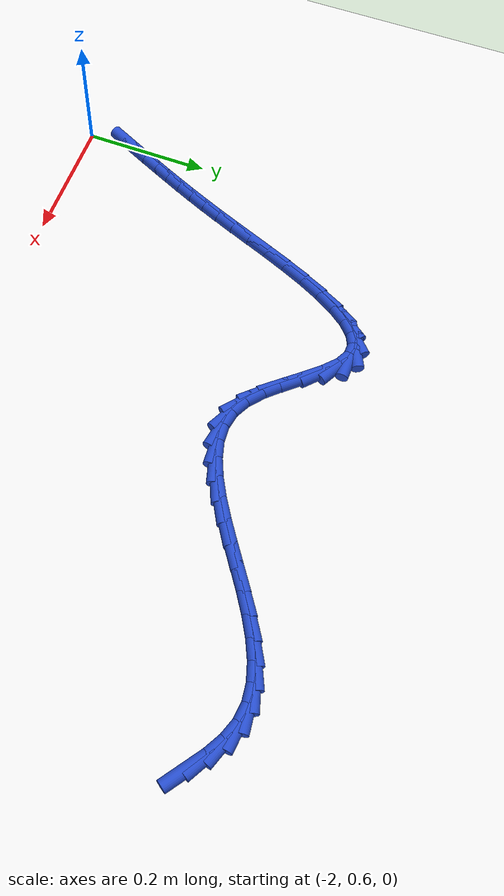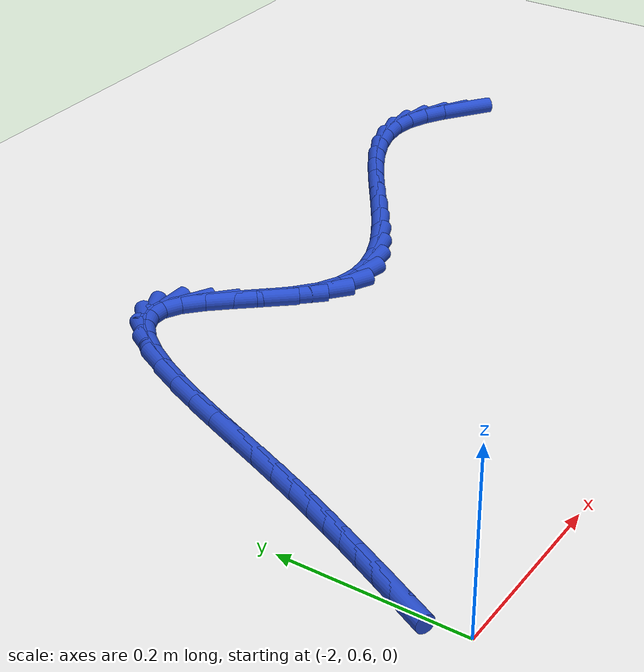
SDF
<sdf version="1.6">
 <world name="default">
  <model name="ground_plane">
   <static>1</static>
   <link name="link">
    <collision name="collision">
     <geometry><plane><normal>0 0 1</normal><size>100 100</size></plane></geometry>
     <surface><friction><ode><mu>100</mu><mu2>50</mu2></ode></friction></surface>
    </collision>
    <visual name="visual">
     <cast_shadows>0</cast_shadows>
     <geometry><plane><normal>0 0 1</normal><size>100 100</size></plane></geometry>
     <material>
      <script><uri>file://media/materials/scripts/gazebo.material</uri><name>Gazebo/WhiteGlow</name></script>
     </material>
    </visual>
   </link>
  </model>
  <model name="line">
   <link name="link_64">
    <pose>-1.0912601882447839 1.1241705421211128 0.01 0 1.57 -0.620754193370026</pose>
    <collision name="collision">
     <geometry><cylinder><radius>0.01</radius><length>0.08</length></cylinder></geometry>
    </collision>
    <visual name="visual">
     <material>
      <script><name>Gazebo/Blue</name><uri>file://media/materials/scripts/gazebo.material</uri></script>
     </material>
     <geometry><cylinder><radius>0.01</radius><length>0.08</length></cylinder></geometry>
    </visual>
   </link>
   <link name="link_65">
    <pose>-1.1162458240286837 1.142036476023913 0.01 0 1.57 -0.5146309187651498</pose>
    <collision name="collision">
     <geometry><cylinder><radius>0.01</radius><length>0.08</length></cylinder></geometry>
    </collision>
    <visual name="visual">
     <material>
      <script><name>Gazebo/Blue</name><uri>file://media/materials/scripts/gazebo.material</uri></script>
     </material>
     <geometry><cylinder><radius>0.01</radius><length>0.08</length></cylinder></geometry>
    </visual>
   </link>
   <link name="link_66">
    <pose>-1.1416444502299576 1.1563982409591573 0.01 0 1.57 -0.34747569862418815</pose>
    <collision name="collision">
     <geometry><cylinder><radius>0.01</radius><length>0.08</length></cylinder></geometry>
    </collision>
    <visual name="visual">
     <material>
      <script><name>Gazebo/Blue</name><uri>file://media/materials/scripts/gazebo.material</uri></script>
     </material>
     <geometry><cylinder><radius>0.01</radius><length>0.08</length></cylinder></geometry>
    </visual>
   </link>
   <link name="link_67">
    <pose>-1.1676107023713325 1.1658024506579252 0.01 0 1.57 -0.11620844488841818</pose>
    <collision name="collision">
     <geometry><cylinder><radius>0.01</radius><length>0.08</length></cylinder></geometry>
    </collision>
    <visual name="visual">
     <material>
      <script><name>Gazebo/Blue</name><uri>file://media/materials/scripts/gazebo.material</uri></script>
     </material>
     <geometry><cylinder><radius>0.01</radius><length>0.08</length></cylinder></geometry>
    </visual>
   </link>
   <link name="link_68">
    <pose>-1.194285570228508 1.1689163252101482 0.01 0 1.57 0.1132284712387262</pose>
    <collision name="collision">
     <geometry><cylinder><radius>0.01</radius><length>0.08</length></cylinder></geometry>
    </collision>
    <visual name="visual">
     <material>
      <script><name>Gazebo/Blue</name><uri>file://media/materials/scripts/gazebo.material</uri></script>
     </material>
     <geometry><cylinder><radius>0.01</radius><length>0.08</length></cylinder></geometry>
    </visual>
   </link>
   <link name="link_69">
    <pose>-1.221651951743687 1.165804361114755 0.01 0 1.57 0.2912066357050443</pose>
    <collision name="collision">
     <geometry><cylinder><radius>0.01</radius><length>0.08</length></cylinder></geometry>
    </collision>
    <visual name="visual">
     <material>
      <script><name>Gazebo/Blue</name><uri>file://media/materials/scripts/gazebo.material</uri></script>
     </material>
     <geometry><cylinder><radius>0.01</radius><length>0.08</length></cylinder></geometry>
    </visual>
   </link>
   <link name="link_70">
    <pose>-1.249591005945047 1.157430262510288 0.01 0 1.57 0.419380567588263</pose>
    <collision name="collision">
     <geometry><cylinder><radius>0.01</radius><length>0.08</length></cylinder></geometry>
    </collision>
    <visual name="visual">
     <material>
      <script><name>Gazebo/Blue</name><uri>file://media/materials/scripts/gazebo.material</uri></script>
     </material>
     <geometry><cylinder><radius>0.01</radius><length>0.08</length></cylinder></geometry>
    </visual>
   </link>
   <link name="link_71">
    <pose>-1.2779822076684817 1.144772619074259 0.01 0 1.57 0.5072441272788148</pose>
    <collision name="collision">
     <geometry><cylinder><radius>0.01</radius><length>0.08</length></cylinder></geometry>
    </collision>
    <visual name="visual">
     <material>
      <script><name>Gazebo/Blue</name><uri>file://media/materials/scripts/gazebo.material</uri></script>
     </material>
     <geometry><cylinder><radius>0.01</radius><length>0.08</length></cylinder></geometry>
    </visual>
   </link>
   <link name="link_72">
    <pose>-1.3067050317498823 1.1288100204841793 0.01 0 1.57 0.5636845109770585</pose>
    <collision name="collision">
     <geometry><cylinder><radius>0.01</radius><length>0.08</length></cylinder></geometry>
    </collision>
    <visual name="visual">
     <material>
      <script><name>Gazebo/Blue</name><uri>file://media/materials/scripts/gazebo.material</uri></script>
     </material>
     <geometry><cylinder><radius>0.01</radius><length>0.08</length></cylinder></geometry>
    </visual>
   </link>
   <link name="link_73">
    <pose>-1.3356389530251436 1.1105210564175605 0.01 0 1.57 0.594818910414515</pose>
    <collision name="collision">
     <geometry><cylinder><radius>0.01</radius><length>0.08</length></cylinder></geometry>
    </collision>
    <visual name="visual">
     <material>
      <script><name>Gazebo/Blue</name><uri>file://media/materials/scripts/gazebo.material</uri></script>
     </material>
     <geometry><cylinder><radius>0.01</radius><length>0.08</length></cylinder></geometry>
    </visual>
   </link>
   <link name="link_74">
    <pose>-1.3646634463301586 1.0908843165519138 0.01 0 1.57 0.6039758114208391</pose>
    <collision name="collision">
     <geometry><cylinder><radius>0.01</radius><length>0.08</length></cylinder></geometry>
    </collision>
    <visual name="visual">
     <material>
      <script><name>Gazebo/Blue</name><uri>file://media/materials/scripts/gazebo.material</uri></script>
     </material>
     <geometry><cylinder><radius>0.01</radius><length>0.08</length></cylinder></geometry>
    </visual>
   </link>
   <link name="link_75">
    <pose>-1.3936579865008187 1.0708783905647496 0.01 0 1.57 0.5920037202527177</pose>
    <collision name="collision">
     <geometry><cylinder><radius>0.01</radius><length>0.08</length></cylinder></geometry>
    </collision>
    <visual name="visual">
     <material>
      <script><name>Gazebo/Blue</name><uri>file://media/materials/scripts/gazebo.material</uri></script>
     </material>
     <geometry><cylinder><radius>0.01</radius><length>0.08</length></cylinder></geometry>
    </visual>
   </link>
   <link name="link_76">
    <pose>-1.4225020483730182 1.0514818681335807 0.01 0 1.57 0.5573492386233017</pose>
    <collision name="collision">
     <geometry><cylinder><radius>0.01</radius><length>0.08</length></cylinder></geometry>
    </collision>
    <visual name="visual">
     <material>
      <script><name>Gazebo/Blue</name><uri>file://media/materials/scripts/gazebo.material</uri></script>
     </material>
     <geometry><cylinder><radius>0.01</radius><length>0.08</length></cylinder></geometry>
    </visual>
   </link>
   <link name="link_77">
    <pose>-1.4510751067826488 1.033673338935917 0.01 0 1.57 0.4957901919988571</pose>
    <collision name="collision">
     <geometry><cylinder><radius>0.01</radius><length>0.08</length></cylinder></geometry>
    </collision>
    <visual name="visual">
     <material>
      <script><name>Gazebo/Blue</name><uri>file://media/materials/scripts/gazebo.material</uri></script>
     </material>
     <geometry><cylinder><radius>0.01</radius><length>0.08</length></cylinder></geometry>
    </visual>
   </link>
   <link name="link_78">
    <pose>-1.479256636565605 1.0184313926492707 0.01 0 1.57 0.3999480874389885</pose>
    <collision name="collision">
     <geometry><cylinder><radius>0.01</radius><length>0.08</length></cylinder></geometry>
    </collision>
    <visual name="visual">
     <material>
      <script><name>Gazebo/Blue</name><uri>file://media/materials/scripts/gazebo.material</uri></script>
     </material>
     <geometry><cylinder><radius>0.01</radius><length>0.08</length></cylinder></geometry>
    </visual>
   </link>
   <link name="link_79">
    <pose>-1.5069261125577786 1.0067346189511532 0.01 0 1.57 0.2593302625753998</pose>
    <collision name="collision">
     <geometry><cylinder><radius>0.01</radius><length>0.08</length></cylinder></geometry>
    </collision>
    <visual name="visual">
     <material>
      <script><name>Gazebo/Blue</name><uri>file://media/materials/scripts/gazebo.material</uri></script>
     </material>
     <geometry><cylinder><radius>0.01</radius><length>0.08</length></cylinder></geometry>
    </visual>
   </link>
   <link name="link_80">
    <pose>-1.533963009595063 0.9995616075190752 0.01 0 1.57 0.06347695003753862</pose>
    <collision name="collision">
     <geometry><cylinder><radius>0.01</radius><length>0.08</length></cylinder></geometry>
    </collision>
    <visual name="visual">
     <material>
      <script><name>Gazebo/Blue</name><uri>file://media/materials/scripts/gazebo.material</uri></script>
     </material>
     <geometry><cylinder><radius>0.01</radius><length>0.08</length></cylinder></geometry>
    </visual>
   </link>
   <link name="link_81">
    <pose>-1.5602468025133507 0.9978909480305482 0.01 0 1.57 -0.18709149837114783</pose>
    <collision name="collision">
     <geometry><cylinder><radius>0.01</radius><length>0.08</length></cylinder></geometry>
    </collision>
    <visual name="visual">
     <material>
      <script><name>Gazebo/Blue</name><uri>file://media/materials/scripts/gazebo.material</uri></script>
     </material>
     <geometry><cylinder><radius>0.01</radius><length>0.08</length></cylinder></geometry>
    </visual>
   </link>
   <link name="link_82">
    <pose>-1.5856569661485351 1.0027012301630835 0.01 0 1.57 -0.46541060011991486</pose>
    <collision name="collision">
     <geometry><cylinder><radius>0.01</radius><length>0.08</length></cylinder></geometry>
    </collision>
    <visual name="visual">
     <material>
      <script><name>Gazebo/Blue</name><uri>file://media/materials/scripts/gazebo.material</uri></script>
     </material>
     <geometry><cylinder><radius>0.01</radius><length>0.08</length></cylinder></geometry>
    </visual>
   </link>
   <link name="link_83">
    <pose>-1.6100733873856257 1.0149632957275725 0.01 0 1.57 -0.6945155006325218</pose>
    <collision name="collision">
     <geometry><cylinder><radius>0.01</radius><length>0.08</length></cylinder></geometry>
    </collision>
    <visual name="visual">
     <material>
      <script><name>Gazebo/Blue</name><uri>file://media/materials/scripts/gazebo.material</uri></script>
     </material>
     <geometry><cylinder><radius>0.01</radius><length>0.08</length></cylinder></geometry>
    </visual>
   </link>
   <link name="link_84">
    <pose>-1.633440867891998 1.0344273770110093 0.01 0 1.57 -0.8173119481413946</pose>
    <collision name="collision">
     <geometry><cylinder><radius>0.01</radius><length>0.08</length></cylinder></geometry>
    </collision>
    <visual name="visual">
     <material>
      <script><name>Gazebo/Blue</name><uri>file://media/materials/scripts/gazebo.material</uri></script>
     </material>
     <geometry><cylinder><radius>0.01</radius><length>0.08</length></cylinder></geometry>
    </visual>
   </link>
   <link name="link_85">
    <pose>-1.6558393235288873 1.058303118997737 0.01 0 1.57 -0.8634671493344086</pose>
    <collision name="collision">
     <geometry><cylinder><radius>0.01</radius><length>0.08</length></cylinder></geometry>
    </collision>
    <visual name="visual">
     <material>
      <script><name>Gazebo/Blue</name><uri>file://media/materials/scripts/gazebo.material</uri></script>
     </material>
     <geometry><cylinder><radius>0.01</radius><length>0.08</length></cylinder></geometry>
    </visual>
   </link>
   <link name="link_86">
    <pose>-1.6773655347235532 1.0834830578541 0.01 0 1.57 -0.8448358490047891</pose>
    <collision name="collision">
     <geometry><cylinder><radius>0.01</radius><length>0.08</length></cylinder></geometry>
    </collision>
    <visual name="visual">
     <material>
      <script><name>Gazebo/Blue</name><uri>file://media/materials/scripts/gazebo.material</uri></script>
     </material>
     <geometry><cylinder><radius>0.01</radius><length>0.08</length></cylinder></geometry>
    </visual>
   </link>
   <link name="link_87">
    <pose>-1.6981162819032556 1.1068597297464418 0.01 0 1.57 -0.7437459403987068</pose>
    <collision name="collision">
     <geometry><cylinder><radius>0.01</radius><length>0.08</length></cylinder></geometry>
    </collision>
    <visual name="visual">
     <material>
      <script><name>Gazebo/Blue</name><uri>file://media/materials/scripts/gazebo.material</uri></script>
     </material>
     <geometry><cylinder><radius>0.01</radius><length>0.08</length></cylinder></geometry>
    </visual>
   </link>
   <link name="link_88">
    <pose>-1.7181883454952542 1.1253256708411066 0.01 0 1.57 -0.49218034463802124</pose>
    <collision name="collision">
     <geometry><cylinder><radius>0.01</radius><length>0.08</length></cylinder></geometry>
    </collision>
    <visual name="visual">
     <material>
      <script><name>Gazebo/Blue</name><uri>file://media/materials/scripts/gazebo.material</uri></script>
     </material>
     <geometry><cylinder><radius>0.01</radius><length>0.08</length></cylinder></geometry>
    </visual>
   </link>
   <link name="link_89">
    <pose>-1.7376784356611237 1.1357761026511883 0.01 0 1.57 -0.02379140664681015</pose>
    <collision name="collision">
     <geometry><cylinder><radius>0.01</radius><length>0.08</length></cylinder></geometry>
    </collision>
    <visual name="visual">
     <material>
      <script><name>Gazebo/Blue</name><uri>file://media/materials/scripts/gazebo.material</uri></script>
     </material>
     <geometry><cylinder><radius>0.01</radius><length>0.08</length></cylinder></geometry>
    </visual>
   </link>
   <link name="link_90">
    <pose>-1.7566539197736541 1.1362276413082084 0.01 0 1.57 0.4396517719784026</pose>
    <collision name="collision">
     <geometry><cylinder><radius>0.01</radius><length>0.08</length></cylinder></geometry>
    </collision>
    <visual name="visual">
     <material>
      <script><name>Gazebo/Blue</name><uri>file://media/materials/scripts/gazebo.material</uri></script>
     </material>
     <geometry><cylinder><radius>0.01</radius><length>0.08</length></cylinder></geometry>
    </visual>
   </link>
   <link name="link_91">
    <pose>-1.7751075657602657 1.127547873149653 0.01 0 1.57 0.744276896580897</pose>
    <collision name="collision">
     <geometry><cylinder><radius>0.01</radius><length>0.08</length></cylinder></geometry>
    </collision>
    <visual name="visual">
     <material>
      <script><name>Gazebo/Blue</name><uri>file://media/materials/scripts/gazebo.material</uri></script>
     </material>
     <geometry><cylinder><radius>0.01</radius><length>0.08</length></cylinder></geometry>
    </visual>
   </link>
   <link name="link_92">
    <pose>-1.7930204615725192 1.11105075865169 0.01 0 1.57 0.9244392739908857</pose>
    <collision name="collision">
     <geometry><cylinder><radius>0.01</radius><length>0.08</length></cylinder></geometry>
    </collision>
    <visual name="visual">
     <material>
      <script><name>Gazebo/Blue</name><uri>file://media/materials/scripts/gazebo.material</uri></script>
     </material>
     <geometry><cylinder><radius>0.01</radius><length>0.08</length></cylinder></geometry>
    </visual>
   </link>
   <link name="link_93">
    <pose>-1.8103736951619769 1.0880502582904858 0.01 0 1.57 1.0340180898830007</pose>
    <collision name="collision">
     <geometry><cylinder><radius>0.01</radius><length>0.08</length></cylinder></geometry>
    </collision>
    <visual name="visual">
     <material>
      <script><name>Gazebo/Blue</name><uri>file://media/materials/scripts/gazebo.material</uri></script>
     </material>
     <geometry><cylinder><radius>0.01</radius><length>0.08</length></cylinder></geometry>
    </visual>
   </link>
   <link name="link_94">
    <pose>-1.8271483544802007 1.0598603325422078 0.01 0 1.57 1.1035506421934687</pose>
    <collision name="collision">
     <geometry><cylinder><radius>0.01</radius><length>0.08</length></cylinder></geometry>
    </collision>
    <visual name="visual">
     <material>
      <script><name>Gazebo/Blue</name><uri>file://media/materials/scripts/gazebo.material</uri></script>
     </material>
     <geometry><cylinder><radius>0.01</radius><length>0.08</length></cylinder></geometry>
    </visual>
   </link>
   <link name="link_95">
    <pose>-1.8433255274787517 1.0277949418830234 0.01 0 1.57 1.1484547366564242</pose>
    <collision name="collision">
     <geometry><cylinder><radius>0.01</radius><length>0.08</length></cylinder></geometry>
    </collision>
    <visual name="visual">
     <material>
      <script><name>Gazebo/Blue</name><uri>file://media/materials/scripts/gazebo.material</uri></script>
     </material>
     <geometry><cylinder><radius>0.01</radius><length>0.08</length></cylinder></geometry>
    </visual>
   </link>
   <link name="link_96">
    <pose>-1.8588863021091924 0.9931680467891004 0.01 0 1.57 1.176533050696146</pose>
    <collision name="collision">
     <geometry><cylinder><radius>0.01</radius><length>0.08</length></cylinder></geometry>
    </collision>
    <visual name="visual">
     <material>
      <script><name>Gazebo/Blue</name><uri>file://media/materials/scripts/gazebo.material</uri></script>
     </material>
     <geometry><cylinder><radius>0.01</radius><length>0.08</length></cylinder></geometry>
    </visual>
   </link>
   <link name="link_97">
    <pose>-1.8738117663230842 0.9572936077366052 0.01 0 1.57 1.1915416740291425</pose>
    <collision name="collision">
     <geometry><cylinder><radius>0.01</radius><length>0.08</length></cylinder></geometry>
    </collision>
    <visual name="visual">
     <material>
      <script><name>Gazebo/Blue</name><uri>file://media/materials/scripts/gazebo.material</uri></script>
     </material>
     <geometry><cylinder><radius>0.01</radius><length>0.08</length></cylinder></geometry>
    </visual>
   </link>
   <link name="link_98">
    <pose>-1.8880830080719906 0.921485585201706 0.01 0 1.57 1.194628133643989</pose>
    <collision name="collision">
     <geometry><cylinder><radius>0.01</radius><length>0.08</length></cylinder></geometry>
    </collision>
    <visual name="visual">
     <material>
      <script><name>Gazebo/Blue</name><uri>file://media/materials/scripts/gazebo.material</uri></script>
     </material>
     <geometry><cylinder><radius>0.01</radius><length>0.08</length></cylinder></geometry>
    </visual>
   </link>
   <link name="link_99">
    <pose>-1.9016811153074709 0.8870579396605687 0.01 0 1.57 1.1859395211893287</pose>
    <collision name="collision">
     <geometry><cylinder><radius>0.01</radius><length>0.08</length></cylinder></geometry>
    </collision>
    <visual name="visual">
     <material>
      <script><name>Gazebo/Blue</name><uri>file://media/materials/scripts/gazebo.material</uri></script>
     </material>
     <geometry><cylinder><radius>0.01</radius><length>0.08</length></cylinder></geometry>
    </visual>
   </link>
   <link name="link_100">
    <pose>-1.914603144323327 0.8551560532171754 0.01 0 1.57 1.173018923189869</pose>
    <collision name="collision">
     <geometry><cylinder><radius>0.01</radius><length>0.08</length></cylinder></geometry>
    </collision>
    <visual name="visual">
     <material>
      <script><name>Gazebo/Blue</name><uri>file://media/materials/scripts/gazebo.material</uri></script>
     </material>
     <geometry><cylinder><radius>0.01</radius><length>0.08</length></cylinder></geometry>
    </visual>
   </link>
   <link name="link_101">
    <pose>-1.9269570805941336 0.8257542245628399 0.01 0 1.57 1.1601406506519611</pose>
    <collision name="collision">
     <geometry><cylinder><radius>0.01</radius><length>0.08</length></cylinder></geometry>
    </collision>
    <visual name="visual">
     <material>
      <script><name>Gazebo/Blue</name><uri>file://media/materials/scripts/gazebo.material</uri></script>
     </material>
     <geometry><cylinder><radius>0.01</radius><length>0.08</length></cylinder></geometry>
    </visual>
   </link>
   <link name="link_102">
    <pose>-1.9388979846319638 0.7983297794987924 0.01 0 1.57 1.148073364602374</pose>
    <collision name="collision">
     <geometry><cylinder><radius>0.01</radius><length>0.08</length></cylinder></geometry>
    </collision>
    <visual name="visual">
     <material>
      <script><name>Gazebo/Blue</name><uri>file://media/materials/scripts/gazebo.material</uri></script>
     </material>
     <geometry><cylinder><radius>0.01</radius><length>0.08</length></cylinder></geometry>
    </visual>
   </link>
   <link name="link_103">
    <pose>-1.9505810878862258 0.7723582392345827 0.01 0 1.57 1.137658871471558</pose>
    <collision name="collision">
     <geometry><cylinder><radius>0.01</radius><length>0.08</length></cylinder></geometry>
    </collision>
    <visual name="visual">
     <material>
      <script><name>Gazebo/Blue</name><uri>file://media/materials/scripts/gazebo.material</uri></script>
     </material>
     <geometry><cylinder><radius>0.01</radius><length>0.08</length></cylinder></geometry>
    </visual>
   </link>
   <link name="link_104">
    <pose>-1.9621616218063265 0.7473151249797598 0.01 0 1.57 1.129682097127921</pose>
    <collision name="collision">
     <geometry><cylinder><radius>0.01</radius><length>0.08</length></cylinder></geometry>
    </collision>
    <visual name="visual">
     <material>
      <script><name>Gazebo/Blue</name><uri>file://media/materials/scripts/gazebo.material</uri></script>
     </material>
     <geometry><cylinder><radius>0.01</radius><length>0.08</length></cylinder></geometry>
    </visual>
   </link>
   <link name="link_105">
    <pose>-1.9737948178416733 0.7226759579438732 0.01 0 1.57 1.124651423920299</pose>
    <collision name="collision">
     <geometry><cylinder><radius>0.01</radius><length>0.08</length></cylinder></geometry>
    </collision>
    <visual name="visual">
     <material>
      <script><name>Gazebo/Blue</name><uri>file://media/materials/scripts/gazebo.material</uri></script>
     </material>
     <geometry><cylinder><radius>0.01</radius><length>0.08</length></cylinder></geometry>
    </visual>
   </link>
   <link name="link_106">
    <pose>-1.9856345470922323 0.6979226631969179 0.01 0 1.57 1.120648551414694</pose>
    <collision name="collision">
     <geometry><cylinder><radius>0.01</radius><length>0.08</length></cylinder></geometry>
    </collision>
    <visual name="visual">
     <material>
      <script><name>Gazebo/Blue</name><uri>file://media/materials/scripts/gazebo.material</uri></script>
     </material>
     <geometry><cylinder><radius>0.01</radius><length>0.08</length></cylinder></geometry>
    </visual>
   </link>
   <link name="link_107">
    <pose>-1.9977820573522354 0.6727848906181373 0.01 0 1.57 1.1149498270923768</pose>
    <collision name="collision">
     <geometry><cylinder><radius>0.01</radius><length>0.08</length></cylinder></geometry>
    </collision>
    <visual name="visual">
     <material>
      <script><name>Gazebo/Blue</name><uri>file://media/materials/scripts/gazebo.material</uri></script>
     </material>
     <geometry><cylinder><radius>0.01</radius><length>0.08</length></cylinder></geometry>
    </visual>
   </link>
  </model>
 </world>
</sdf>
